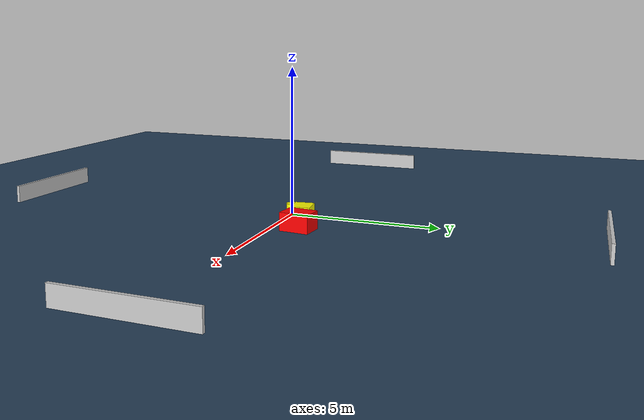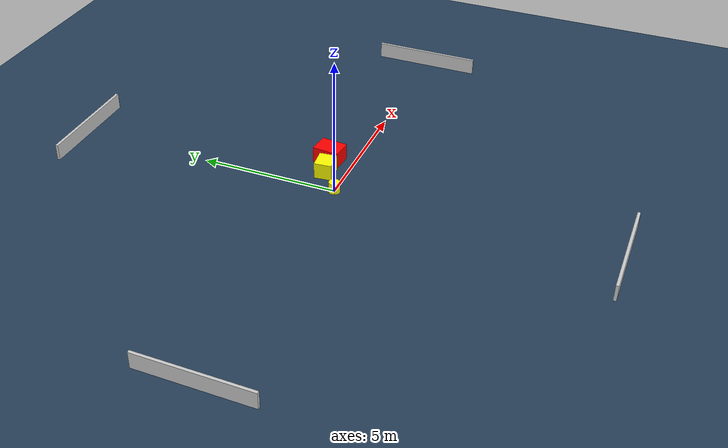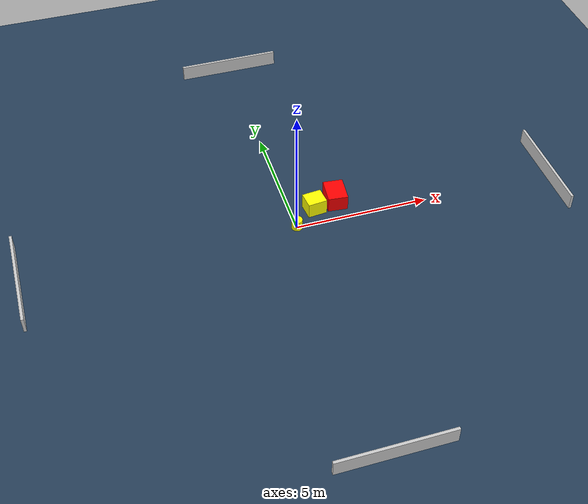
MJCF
<?xml version="1.0" ?>
<mujoco model="generated_environment">
  <option timestep="0.01" integrator="RK4" cone="elliptic"/>
  <default>
    <geom density="1"/>
  </default>
  <asset>
    <texture builtin="gradient" height="3072" name="skybox" rgb1="0.3 0.5 0.7" rgb2="0 0 0" type="skybox" width="512"/>
    <texture builtin="checker" height="300" name="groundplane" rgb1="0.2 0.3 0.4" rgb2="0.1 0.2 0.3" type="2d" width="300"/>
    <material name="groundplane" reflectance="0.2" texrepeat="5 5" texture="groundplane"/>
  </asset>
  <worldbody>
    <light dir="0 0 -1" directional="true" pos="0 0 1.5"/>
    <geom condim="3" friction="0.5 0.005 0.001" material="groundplane" name="floor" pos="0 0 0" size="0 0 0.05" type="plane"/>
    <body name="walls">
      <geom name="wall_1" condim="4" pos="-10.0 0.0 0.3" rgba="0.800000011920929 0.800000011920929 0.800000011920929 1.0" size="0.05 2.0 0.3" type="box"/>
      <geom name="wall_2" condim="4" pos="10.0 0.0 0.3" rgba="0.800000011920929 0.800000011920929 0.800000011920929 1.0" size="0.05 2.0 0.3" type="box"/>
      <geom name="wall_3" condim="4" pos="0.0 -10.0 0.3" rgba="0.800000011920929 0.800000011920929 0.800000011920929 1.0" size="2.0 0.05 0.3" type="box"/>
      <geom name="wall_4" condim="4" pos="0.0 10.0 0.3" rgba="0.800000011920929 0.800000011920929 0.800000011920929 1.0" size="2.0 0.05 0.3" type="box"/>
    </body>
    <body name="robot">
      <joint name="joint_x" type="slide" pos="0 0 0" axis="1 0 0"/>
      <joint name="joint_y" type="slide" pos="0 0 0" axis="0 1 0"/>
      <geom name="robot" type="cylinder" pos="0.0 0.0 0.2" size="0.2 0.2 0.0" mass="5.0" friction="1.0 0.005 0.0001" condim="4" rgba="1.0 1.0 0.0 1.0"/>
    </body>
    <body name="obstacle_1_movable">
      <geom name="obstacle_1_movable" condim="4" pos="0.8937045815430462 0.7131298818621037 0.3" euler="0 0 185.81392626013627" friction="0.0 0.005 0.001" rgba="1.0 1.0 0.0 1.0" size="0.3612681236781272 0.317351765584106 0.3" type="box" mass="0.1"/>
      <joint type="free"/>
    </body>
    <body name="obstacle_2_static">
      <geom name="obstacle_2_static" condim="4" pos="1.7661094929587347 0.9071668558769612 0.3" euler="0 0 354.3449136051162" friction="0.0 0.005 0.001" rgba="1.0 0.0 0.0 1.0" size="0.3716429030413161 0.48654602083396964 0.3" type="box"/>
    </body>
  </worldbody>
  <actuator>
    <motor name="actuator_x" joint="joint_x" gear="1" ctrlrange="-1 1"/>
    <motor name="actuator_y" joint="joint_y" gear="1" ctrlrange="-1 1"/>
  </actuator>
</mujoco>
